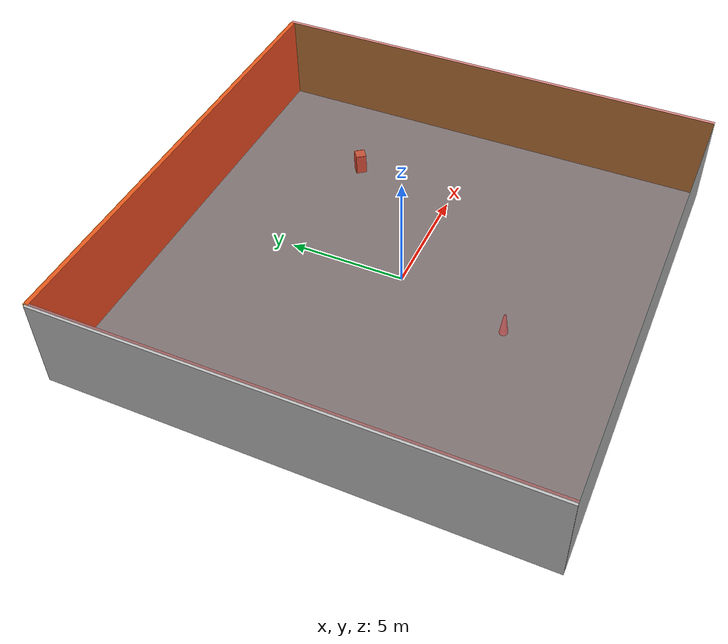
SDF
<sdf version="1.4">
 <world name="default">
  <physics type="ode">
   <max_step_size>0.001</max_step_size>
   <real_time_factor>1</real_time_factor>
   <real_time_update_rate>1000</real_time_update_rate>
   <gravity>0 0 -9.8</gravity>
  </physics>
  <scene><ambient>0.4 0.4 0.4 1</ambient><background>0.7 0.7 0.7 1</background><shadows>1</shadows></scene>
  <model name="Surrounding">
   <static>1</static>
   <link name="Ceiling">
    <collision name="Ceiling_Collision"><geometry><box><size>20 20 0.1</size></box></geometry></collision>
    <visual name="Ceiling_Visual">
     <geometry><box><size>20 20 0.1</size></box></geometry>
     <material>
      <script><uri>file://media/materials/scripts/gazebo.material</uri><name>Gazebo/RedTransparent</name></script>
     </material>
    </visual>
    <pose>0 0 4.05 0 0 0</pose>
   </link>
   <link name="Wall_South">
    <collision name="Wall_South_Collision">
     <geometry><box><size>20 0 4</size></box></geometry>
     <pose>0 0 2 0 -0 0</pose>
    </collision>
    <visual name="Wall_South_Visual">
     <pose>0 0 2 0 -0 0</pose>
     <geometry><box><size>20 0 4</size></box></geometry>
     <material>
      <script><uri>file://media/materials/scripts/gazebo.material</uri><name>Gazebo/White</name></script>
     </material>
    </visual>
    <velocity_decay><linear>0</linear><angular>0</angular></velocity_decay>
    <pose>0 -10 0 0 -0 0</pose>
   </link>
   <link name="Wall_East">
    <collision name="Wall_21_Collision">
     <geometry><box><size>20 0 4</size></box></geometry>
     <pose>0 0 2 0 -0 0</pose>
    </collision>
    <visual name="Wall_21_Visual">
     <pose>0 0 2 0 -0 0</pose>
     <geometry><box><size>20 0 4</size></box></geometry>
     <material>
      <script><uri>file://media/materials/scripts/gazebo.material</uri><name>Gazebo/GreenGlow</name></script>
     </material>
    </visual>
    <velocity_decay><linear>0</linear><angular>0</angular></velocity_decay>
    <pose>10 0 0 0 -0 1.5708</pose>
   </link>
   <link name="Wall_North">
    <collision name="Wall_22_Collision">
     <geometry><box><size>20 0.2 4</size></box></geometry>
     <pose>0 0 2 0 -0 0</pose>
    </collision>
    <visual name="Wall_22_Visual">
     <pose>0 0 2 0 -0 0</pose>
     <geometry><box><size>20 0.2 4</size></box></geometry>
     <material>
      <script><uri>file://media/materials/scripts/gazebo.material</uri><name>Gazebo/Orange</name></script>
     </material>
    </visual>
    <velocity_decay><linear>0</linear><angular>0</angular></velocity_decay>
    <pose>0 10 0 0 -0 0</pose>
   </link>
   <link name="Wall_West">
    <collision name="Wall_23_Collision">
     <geometry><box><size>20 0.2 4</size></box></geometry>
     <pose>0 0 2 0 -0 0</pose>
    </collision>
    <visual name="Wall_23_Visual">
     <pose>0 0 2 0 -0 0</pose>
     <geometry><box><size>20 0.2 4</size></box></geometry>
     <material>
      <script><uri>file://media/materials/scripts/gazebo.material</uri><name>Gazebo/LightOn</name></script>
     </material>
    </visual>
    <velocity_decay><linear>0</linear><angular>0</angular></velocity_decay>
    <pose>-10 0 0 0 0 -1.5708</pose>
   </link>
   <link name="Ground_link">
    <collision name="collision">
     <pose>0 0 .05 0 -0 0</pose>
     <geometry><box><size>20 20 0.1</size></box></geometry>
    </collision>
    <visual name="visual">
     <pose>0 0 .05 0 -0 0</pose>
     <geometry><box><size>20 20 0.1</size></box></geometry>
     <material>
      <script>
       <uri>file://media/materials/scripts/gazebo.material</uri>
       <name>Gazebo/TurquoiseGlowOutline</name>
      </script>
     </material>
    </visual>
   </link>
   <static>1</static>
  </model>
  <spherical_coordinates>
   <surface_model>EARTH_WGS84</surface_model>
   <latitude_deg>0</latitude_deg>
   <longitude_deg>0</longitude_deg>
   <elevation>0</elevation>
   <heading_deg>0</heading_deg>
  </spherical_coordinates>
  <light name="lightball_0" type="diffuse">
   <diffuse>0.8 0.8 0.8 1</diffuse>
   <specular>0.2 0.2 0.2 1</specular>
   <attenuation>
    <range>100</range>
    <constant>0.7</constant>
    <linear>0.01</linear>
    <quadratic>0.001</quadratic>
   </attenuation>
   <direction>-0.5 0.1 -0.9</direction>
   <pose>8.92512381445 2.37701885896 2.27785410188 0 0 0</pose>
  </light>
  <light name="lightball_1" type="diffuse">
   <diffuse>0.8 0.8 0.8 1</diffuse>
   <specular>0.2 0.2 0.2 1</specular>
   <attenuation>
    <range>100</range>
    <constant>0.7</constant>
    <linear>0.01</linear>
    <quadratic>0.001</quadratic>
   </attenuation>
   <direction>-0.5 0.1 -0.9</direction>
   <pose>-3.77389825769 -9.8031850766 2.51558489796 0 0 0</pose>
  </light>
  <light name="lightball_2" type="diffuse">
   <diffuse>0.8 0.8 0.8 1</diffuse>
   <specular>0.2 0.2 0.2 1</specular>
   <attenuation>
    <range>100</range>
    <constant>0.7</constant>
    <linear>0.01</linear>
    <quadratic>0.001</quadratic>
   </attenuation>
   <direction>-0.5 0.1 -0.9</direction>
   <pose>-2.16600712297 6.82341392789 2.27126957632 0 0 0</pose>
  </light>
  <light name="lightball_3" type="diffuse">
   <diffuse>0.8 0.8 0.8 1</diffuse>
   <specular>0.2 0.2 0.2 1</specular>
   <attenuation>
    <range>100</range>
    <constant>0.7</constant>
    <linear>0.01</linear>
    <quadratic>0.001</quadratic>
   </attenuation>
   <direction>-0.5 0.1 -0.9</direction>
   <pose>-7.29117934689 5.49304452365 3.02235085072 0 0 0</pose>
  </light>
  <light name="lightball_4" type="diffuse">
   <diffuse>0.8 0.8 0.8 1</diffuse>
   <specular>0.2 0.2 0.2 1</specular>
   <attenuation>
    <range>100</range>
    <constant>0.7</constant>
    <linear>0.01</linear>
    <quadratic>0.001</quadratic>
   </attenuation>
   <direction>-0.5 0.1 -0.9</direction>
   <pose>-6.77725343419 7.21241503234 1.44080007535 0 0 0</pose>
  </light>
  <light name="lightball_5" type="diffuse">
   <diffuse>0.8 0.8 0.8 1</diffuse>
   <specular>0.2 0.2 0.2 1</specular>
   <attenuation>
    <range>100</range>
    <constant>0.7</constant>
    <linear>0.01</linear>
    <quadratic>0.001</quadratic>
   </attenuation>
   <direction>-0.5 0.1 -0.9</direction>
   <pose>-4.67868195977 4.47329373007 2.86433771093 0 0 0</pose>
  </light>
  <light name="lightball_6" type="diffuse">
   <diffuse>0.8 0.8 0.8 1</diffuse>
   <specular>0.2 0.2 0.2 1</specular>
   <attenuation>
    <range>100</range>
    <constant>0.7</constant>
    <linear>0.01</linear>
    <quadratic>0.001</quadratic>
   </attenuation>
   <direction>-0.5 0.1 -0.9</direction>
   <pose>9.84332969385 -0.289084641802 0.816522103684 0 0 0</pose>
  </light>
  <light name="lightball_7" type="diffuse">
   <diffuse>0.8 0.8 0.8 1</diffuse>
   <specular>0.2 0.2 0.2 1</specular>
   <attenuation>
    <range>100</range>
    <constant>0.7</constant>
    <linear>0.01</linear>
    <quadratic>0.001</quadratic>
   </attenuation>
   <direction>-0.5 0.1 -0.9</direction>
   <pose>-0.379551061983 0.920305798686 3.7972485995 0 0 0</pose>
  </light>
  <light name="lightball_8" type="diffuse">
   <diffuse>0.8 0.8 0.8 1</diffuse>
   <specular>0.2 0.2 0.2 1</specular>
   <attenuation>
    <range>100</range>
    <constant>0.7</constant>
    <linear>0.01</linear>
    <quadratic>0.001</quadratic>
   </attenuation>
   <direction>-0.5 0.1 -0.9</direction>
   <pose>1.29432462664 7.74951300076 1.47195609516 0 0 0</pose>
  </light>
  <include><uri>model://table</uri><pose>-8.67536805946 7.57563265733 0 0 0 1.10328957851</pose></include>
  <include>
   <uri>model://construction_cone</uri>
   <pose>-1.19504685734 -4.82630694312 0 0 0 0.77447243926</pose>
  </include>
  <include><uri>model://cabinet</uri><pose>5.62411956529 4.48996128631 0 0 0 2.20210254895</pose></include>
 </world>
</sdf>

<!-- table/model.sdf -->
<sdf version="1.5">
  <model name="table">
    <static>true</static>
    <link name="link">
      <collision name="surface">
        <pose>0 0 1.0 0 0 0</pose>
        <geometry>
          <box>
            <size>1.5 0.8 0.03</size>
          </box>
        </geometry>
        <surface>
          <friction>
            <ode>
              <mu>0.6</mu>
              <mu2>0.6</mu2>
            </ode>
          </friction>
        </surface>
      </collision>
      <visual name="visual1">
        <pose>0 0 1.0 0 0 0</pose>
        <geometry>
          <box>
            <size>1.5 0.8 0.03</size>
          </box>
        </geometry>
        <material>
          <script>
            <uri>model://media/materials/scripts/gazebo.material</uri>
            <name>Gazebo/Wood</name>
          </script>
        </material>
      </visual>
      <collision name="front_left_leg">
        <pose>0.68 0.38 0.5 0 0 0</pose>
        <geometry>
          <cylinder>
            <radius>0.02</radius>
            <length>1.0</length>
          </cylinder>
        </geometry>
      </collision>
      <visual name="front_left_leg">
        <pose>0.68 0.38 0.5 0 0 0</pose>
        <geometry>
          <cylinder>
            <radius>0.02</radius>
            <length>1.0</length>
          </cylinder>
        </geometry>
        <material>
          <script>
            <uri>model://media/materials/scripts/gazebo.material</uri>
            <name>Gazebo/Grey</name>
          </script>
        </material>
      </visual>
      <collision name="front_right_leg">
        <pose>0.68 -0.38 0.5 0 0 0</pose>
        <geometry>
          <cylinder>
            <radius>0.02</radius>
            <length>1.0</length>
          </cylinder>
        </geometry>
      </collision>
      <visual name="front_right_leg">
        <pose>0.68 -0.38 0.5 0 0 0</pose>
        <geometry>
          <cylinder>
            <radius>0.02</radius>
            <length>1.0</length>
          </cylinder>
        </geometry>
        <material>
          <script>
            <uri>model://media/materials/scripts/gazebo.material</uri>
            <name>Gazebo/Grey</name>
          </script>
        </material>
      </visual>
      <collision name="back_right_leg">
        <pose>-0.68 -0.38 0.5 0 0 0</pose>
        <geometry>
          <cylinder>
            <radius>0.02</radius>
            <length>1.0</length>
          </cylinder>
        </geometry>
      </collision>
      <visual name="back_right_leg">
        <pose>-0.68 -0.38 0.5 0 0 0</pose>
        <geometry>
          <cylinder>
            <radius>0.02</radius>
            <length>1.0</length>
          </cylinder>
        </geometry>
        <material>
          <script>
            <uri>model://media/materials/scripts/gazebo.material</uri>
            <name>Gazebo/Grey</name>
          </script>
        </material>
      </visual>
      <collision name="back_left_leg">
        <pose>-0.68 0.38 0.5 0 0 0</pose>
        <geometry>
          <cylinder>
            <radius>0.02</radius>
            <length>1.0</length>
          </cylinder>
        </geometry>
      </collision>
      <visual name="back_left_leg">
        <pose>-0.68 0.38 0.5 0 0 0</pose>
        <geometry>
          <cylinder>
            <radius>0.02</radius>
            <length>1.0</length>
          </cylinder>
        </geometry>
        <material>
          <script>
            <uri>model://media/materials/scripts/gazebo.material</uri>
            <name>Gazebo/Grey</name>
          </script>
        </material>
      </visual>
    </link>
  </model>
</sdf>

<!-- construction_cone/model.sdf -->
<sdf version="1.5">
  <model name="Construction Cone">
    <link name="link">
      <collision name="collision">
        <geometry>
          <mesh>
            <scale>10 10 10</scale>
            <uri>file://isr-testbed/construction_cone/meshes/construction_cone.dae</uri>
          </mesh>
        </geometry>
      </collision>
      <visual name="visual">
        <geometry>
          <mesh>
            <scale>10 10 10</scale>
            <uri>file://isr-testbed/construction_cone/meshes/construction_cone.dae</uri>
          </mesh>
        </geometry>
      </visual>
    </link>
  </model>
</sdf>

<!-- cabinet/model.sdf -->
<sdf version="1.5">
  <model name="cabinet">
    <static>true</static>
    <link name="cabinet_bottom_plate">
      <inertial>
        <pose>0 0 -1 0 0 0</pose>
        <inertia>
          <ixx>2.050000</ixx>
          <ixy>0</ixy>
          <ixz>0</ixz>
          <iyy>2.050000</iyy>
          <iyz>0</iyz>
          <izz>2.050000</izz>
        </inertia>
        <mass>25.000000</mass>
      </inertial>
      <collision name="cabinet_bottom_plate_geom">
        <pose>0 0 0.010000 0 0 0</pose>
        <geometry>
          <box>
            <size>0.450000 0.450000 0.020000</size>
          </box>
        </geometry>
      </collision>
      <visual name="cabinet_bottom_plate_geom_visual">
        <pose>0 0 0.010000 0 0 0</pose>
        <geometry>
          <box>
            <size>0.450000 0.450000 0.020000</size>
          </box>
        </geometry>
        <material>
          <script>
            <uri>model://media/materials/scripts/gazebo.material</uri>
            <name>Gazebo/Wood</name>
          </script>
        </material>
      </visual>
      <collision name="cabinet_bottom_plate_geom_cabinet_back_plate">
        <pose>0.235000 0 0.510000 0 0 0</pose>
        <geometry>
          <box>
            <size>0.020000 0.450000 1.020000</size>
          </box>
        </geometry>
      </collision>
      <visual name="cabinet_bottom_plate_geom_cabinet_back_plate_visual">
        <pose>0.235000 0 0.510000 0 0 0</pose>
        <geometry>
          <box>
            <size>0.020000 0.450000 1.020000</size>
          </box>
        </geometry>
        <material>
          <script>
            <uri>model://media/materials/scripts/gazebo.material</uri>
            <name>Gazebo/Wood</name>
          </script>
        </material>
      </visual>
      <collision name="cabinet_bottom_plate_geom_cabinet_left_plate">
        <pose>0 0.235000 0.510000 0 0 0</pose>
        <geometry>
          <box>
            <size>0.450000 0.020000 1.020000</size>
          </box>
        </geometry>
      </collision>
      <visual name="cabinet_bottom_plate_geom_cabinet_left_plate_visual">
        <pose>0 0.235000 0.510000 0 0 0</pose>
        <geometry>
          <box>
            <size>0.450000 0.020000 1.020000</size>
          </box>
        </geometry>
        <material>
          <script>
            <uri>model://media/materials/scripts/gazebo.material</uri>
            <name>Gazebo/Wood</name>
          </script>
        </material>
      </visual>
      <collision name="cabinet_bottom_plate_geom_cabinet_middle_plate">
        <pose>0 0 0.510000 0 0 0</pose>
        <geometry>
          <box>
            <size>0.450000 0.450000 0.020000</size>
          </box>
        </geometry>
      </collision>
      <visual name="cabinet_bottom_plate_geom_cabinet_middle_plate_visual">
        <pose>0 0 0.510000 0 0 0</pose>
        <geometry>
          <box>
            <size>0.450000 0.450000 0.020000</size>
          </box>
        </geometry>
        <material>
          <script>
            <uri>model://media/materials/scripts/gazebo.material</uri>
            <name>Gazebo/Wood</name>
          </script>
        </material>
      </visual>
      <collision name="cabinet_bottom_plate_geom_cabinet_right_plate">
        <pose>0 -0.235000 0.510000 0 0 0</pose>
        <geometry>
          <box>
            <size>0.450000 0.020000 1.020000</size>
          </box>
        </geometry>
      </collision>
      <visual name="cabinet_bottom_plate_geom_cabinet_right_plate_visual">
        <pose>0 -0.235000 0.510000 0 0 0</pose>
        <geometry>
          <box>
            <size>0.450000 0.020000 1.020000</size>
          </box>
        </geometry>
        <material>
          <script>
            <uri>model://media/materials/scripts/gazebo.material</uri>
            <name>Gazebo/Wood</name>
          </script>
        </material>
      </visual>
      <collision name="cabinet_bottom_plate_geom_cabinet_top_plate">
        <pose>0 0 1.010000 0 0 0</pose>
        <geometry>
          <box>
            <size>0.450000 0.450000 0.020000</size>
          </box>
        </geometry>
      </collision>
      <visual name="cabinet_bottom_plate_geom_cabinet_top_plate_visual">
        <pose>0 0 1.010000 0 0 0</pose>
        <geometry>
          <box>
            <size>0.450000 0.450000 0.020000</size>
          </box>
        </geometry>
        <material>
          <script>
            <uri>model://media/materials/scripts/gazebo.material</uri>
            <name>Gazebo/Wood</name>
          </script>
        </material>
      </visual>
    </link>
  </model>
</sdf>
